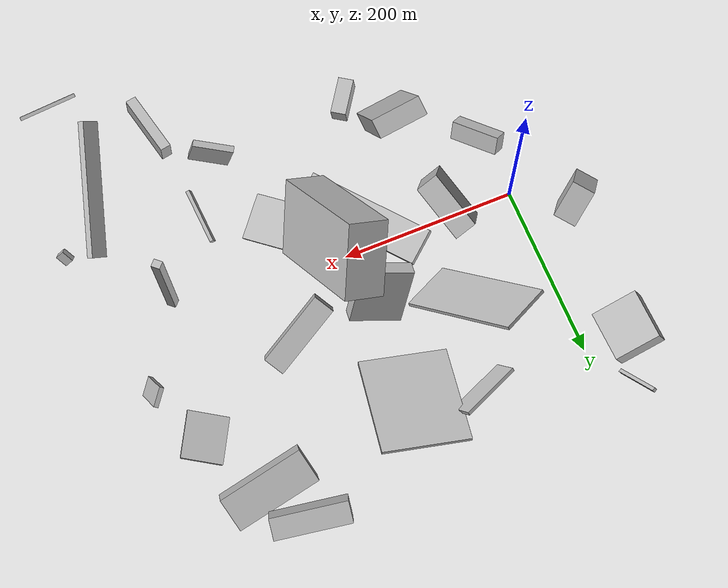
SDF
<sdf version="1.6">
 <world name="default">
  <scene>
   <sky><clouds><speed>12</speed></clouds></sky>
   <ambient>0.4 0.4 0.4 1</ambient>
   <background>0.7 0.7 0.7 1</background>
   <shadows>1</shadows>
  </scene>
  <gravity>0 0 -9.8066</gravity>
  <magnetic_field>6e-06 2.3e-05 -4.2e-05</magnetic_field>
  <physics default="0" name="default_physics" type="ode">
   <ode>
    <solver>
     <type>quick</type>
     <iters>10</iters>
     <sor>1.0</sor>
     <use_dynamic_moi_rescaling>0</use_dynamic_moi_rescaling>
    </solver>
    <constraints>
     <cfm>0</cfm>
     <erp>0.2</erp>
     <contact_max_correcting_vel>100</contact_max_correcting_vel>
     <contact_surface_layer>0.001</contact_surface_layer>
    </constraints>
   </ode>
   <max_step_size>0.004</max_step_size>
   <real_time_factor>1</real_time_factor>
   <real_time_update_rate>250</real_time_update_rate>
  </physics>
  <light name="sun" type="directional">
   <pose>0 0 10 0 0 0</pose>
   <diffuse>0.8 0.8 0.8 1</diffuse>
   <specular>0.2 0.2 0.2 1</specular>
   <attenuation>
    <range>1000</range>
    <constant>0.9</constant>
    <linear>0.01</linear>
    <quadratic>0.001</quadratic>
   </attenuation>
   <direction>-0.5 0.1 -0.9</direction>
  </light>
  <model name="building_1">
   <static>0</static>
   <pose>236.16062472716288 46.290515136741874 96.91088373057596 -0.49463708812445817 -0.7122660968472387 1.8048696692309025</pose>
   <link name="link">
    <gravity>0</gravity>
    <pose>0 0 42.0 0 0 0</pose>
    <collision name="collision"><geometry><box><size>150 45 84</size></box></geometry></collision>
    <visual name="visual">
     <cast_shadows>0</cast_shadows>
     <geometry><box><size>150 45 84</size></box></geometry>
     <material>
      <script>
       <uri>model://HANNAS_wall/materials/scripts</uri>
       <uri>model://HANNAS_wall/materials/textures</uri>
       <name>vrc/HANNAS_wall</name>
      </script>
     </material>
    </visual>
   </link>
  </model>
  <model name="building_2">
   <static>0</static>
   <pose>-28.33255233176123 71.10793827129255 75.92268475296956 0.8490178005715298 -0.16557899729844489 -0.8634249968507671</pose>
   <link name="link">
    <gravity>0</gravity>
    <pose>0 0 21.5 0 0 0</pose>
    <collision name="collision"><geometry><box><size>26 48 43</size></box></geometry></collision>
    <visual name="visual">
     <cast_shadows>0</cast_shadows>
     <geometry><box><size>26 48 43</size></box></geometry>
     <material>
      <script>
       <uri>model://HANNAS_wall/materials/scripts</uri>
       <uri>model://HANNAS_wall/materials/textures</uri>
       <name>vrc/HANNAS_wall</name>
      </script>
     </material>
    </visual>
   </link>
  </model>
  <model name="building_3">
   <static>0</static>
   <pose>70.63546792099761 -116.4435035707826 72.72080249831075 1.7219254542323839 0.49725884089211825 1.721339494194487</pose>
   <link name="link">
    <gravity>0</gravity>
    <pose>0 0 28.5 0 0 0</pose>
    <collision name="collision"><geometry><box><size>22 126 57</size></box></geometry></collision>
    <visual name="visual">
     <cast_shadows>0</cast_shadows>
     <geometry><box><size>22 126 57</size></box></geometry>
     <material>
      <script>
       <uri>model://HANNAS_wall/materials/scripts</uri>
       <uri>model://HANNAS_wall/materials/textures</uri>
       <name>vrc/HANNAS_wall</name>
      </script>
     </material>
    </visual>
   </link>
  </model>
  <model name="building_4">
   <static>0</static>
   <pose>167.01510822031847 86.38000266809233 72.40352613044124 1.2815026446972964 -0.42433475394031817 1.4118915057648609</pose>
   <link name="link">
    <gravity>0</gravity>
    <pose>0 0 29.0 0 0 0</pose>
    <collision name="collision"><geometry><box><size>16 70 58</size></box></geometry></collision>
    <visual name="visual">
     <cast_shadows>0</cast_shadows>
     <geometry><box><size>16 70 58</size></box></geometry>
     <material>
      <script>
       <uri>model://HANNAS_wall/materials/scripts</uri>
       <uri>model://HANNAS_wall/materials/textures</uri>
       <name>vrc/HANNAS_wall</name>
      </script>
     </material>
    </visual>
   </link>
  </model>
  <model name="building_5">
   <static>0</static>
   <pose>487.07726252920685 -78.46099318033173 102.74551354684445 2.498011397098992 -0.5780667050915819 0.9768756123714296</pose>
   <link name="link">
    <gravity>0</gravity>
    <pose>0 0 5.5 0 0 0</pose>
    <collision name="collision"><geometry><box><size>7 14 11</size></box></geometry></collision>
    <visual name="visual">
     <cast_shadows>0</cast_shadows>
     <geometry><box><size>7 14 11</size></box></geometry>
     <material>
      <script>
       <uri>model://HANNAS_wall/materials/scripts</uri>
       <uri>model://HANNAS_wall/materials/textures</uri>
       <name>vrc/HANNAS_wall</name>
      </script>
     </material>
    </visual>
   </link>
  </model>
  <model name="building_6">
   <static>0</static>
   <pose>298.5208377628368 107.93630995493432 130.14979058569116 2.720283308462723 -0.33867624679498726 -0.9794012958096773</pose>
   <link name="link">
    <gravity>0</gravity>
    <pose>0 0 10.5 0 0 0</pose>
    <collision name="collision"><geometry><box><size>24 84 21</size></box></geometry></collision>
    <visual name="visual">
     <cast_shadows>0</cast_shadows>
     <geometry><box><size>24 84 21</size></box></geometry>
     <material>
      <script>
       <uri>model://HANNAS_wall/materials/scripts</uri>
       <uri>model://HANNAS_wall/materials/textures</uri>
       <name>vrc/HANNAS_wall</name>
      </script>
     </material>
    </visual>
   </link>
  </model>
  <model name="building_7">
   <static>0</static>
   <pose>405.53108868248125 -24.778006139791703 68.54630293175555 -0.4070789827929711 -1.4976939772704538 -0.3472038522969602</pose>
   <link name="link">
    <gravity>0</gravity>
    <pose>0 0 5.0 0 0 0</pose>
    <collision name="collision"><geometry><box><size>119 9 10</size></box></geometry></collision>
    <visual name="visual">
     <cast_shadows>0</cast_shadows>
     <geometry><box><size>119 9 10</size></box></geometry>
     <material>
      <script>
       <uri>model://HANNAS_wall/materials/scripts</uri>
       <uri>model://HANNAS_wall/materials/textures</uri>
       <name>vrc/HANNAS_wall</name>
      </script>
     </material>
    </visual>
   </link>
  </model>
  <model name="building_8">
   <static>0</static>
   <pose>286.40617466205504 -117.83660372470997 106.56288196533747 1.4038154023176006 0.2102675810457593 1.0459930024372417</pose>
   <link name="link">
    <gravity>0</gravity>
    <pose>0 0 22.0 0 0 0</pose>
    <collision name="collision"><geometry><box><size>7 72 44</size></box></geometry></collision>
    <visual name="visual">
     <cast_shadows>0</cast_shadows>
     <geometry><box><size>7 72 44</size></box></geometry>
     <material>
      <script>
       <uri>model://HANNAS_wall/materials/scripts</uri>
       <uri>model://HANNAS_wall/materials/textures</uri>
       <name>vrc/HANNAS_wall</name>
      </script>
     </material>
    </visual>
   </link>
  </model>
  <model name="building_9">
   <static>0</static>
   <pose>443.6424422395214 -159.86257526890438 62.527046419911336 2.570947487391632 -0.39526347403190343 -1.891196128972499</pose>
   <link name="link">
    <gravity>0</gravity>
    <pose>0 0 13.0 0 0 0</pose>
    <collision name="collision"><geometry><box><size>150 7 26</size></box></geometry></collision>
    <visual name="visual">
     <cast_shadows>0</cast_shadows>
     <geometry><box><size>150 7 26</size></box></geometry>
     <material>
      <script>
       <uri>model://HANNAS_wall/materials/scripts</uri>
       <uri>model://HANNAS_wall/materials/textures</uri>
       <name>vrc/HANNAS_wall</name>
      </script>
     </material>
    </visual>
   </link>
  </model>
  <model name="building_10">
   <static>0</static>
   <pose>-25.852732181940052 263.5575227391844 46.43550043321168 -2.3718054196483527 0.2163742666656243 0.49333499311096424</pose>
   <link name="link">
    <gravity>0</gravity>
    <pose>0 0 2.0 0 0 0</pose>
    <collision name="collision"><geometry><box><size>4 61 4</size></box></geometry></collision>
    <visual name="visual">
     <cast_shadows>0</cast_shadows>
     <geometry><box><size>4 61 4</size></box></geometry>
     <material>
      <script>
       <uri>model://HANNAS_wall/materials/scripts</uri>
       <uri>model://HANNAS_wall/materials/textures</uri>
       <name>vrc/HANNAS_wall</name>
      </script>
     </material>
    </visual>
   </link>
  </model>
  <model name="building_11">
   <static>0</static>
   <pose>174.73260147646326 -15.880443964468041 57.854459733249996 -2.8829359297554777 -0.1454288954800238 2.200199579583886</pose>
   <link name="link">
    <gravity>0</gravity>
    <pose>0 0 4.0 0 0 0</pose>
    <collision name="collision"><geometry><box><size>150 41 8</size></box></geometry></collision>
    <visual name="visual">
     <cast_shadows>0</cast_shadows>
     <geometry><box><size>150 41 8</size></box></geometry>
     <material>
      <script>
       <uri>model://HANNAS_wall/materials/scripts</uri>
       <uri>model://HANNAS_wall/materials/textures</uri>
       <name>vrc/HANNAS_wall</name>
      </script>
     </material>
    </visual>
   </link>
  </model>
  <model name="building_12">
   <static>0</static>
   <pose>69.32279993968025 1.3425287346238939 65.07687106373697 2.423559911123164 -0.9986235374897586 0.9789026113602957</pose>
   <link name="link">
    <gravity>0</gravity>
    <pose>0 0 13.0 0 0 0</pose>
    <collision name="collision"><geometry><box><size>72 68 26</size></box></geometry></collision>
    <visual name="visual">
     <cast_shadows>0</cast_shadows>
     <geometry><box><size>72 68 26</size></box></geometry>
     <material>
      <script>
       <uri>model://HANNAS_wall/materials/scripts</uri>
       <uri>model://HANNAS_wall/materials/textures</uri>
       <name>vrc/HANNAS_wall</name>
      </script>
     </material>
    </visual>
   </link>
  </model>
  <model name="building_13">
   <static>0</static>
   <pose>446.6740446041411 -290.17584301805437 27.03771572283657 2.1065739555628817 -0.09994176354246467 -3.1140641541067664</pose>
   <link name="link">
    <gravity>0</gravity>
    <pose>0 0 2.0 0 0 0</pose>
    <collision name="collision"><geometry><box><size>67 4 4</size></box></geometry></collision>
    <visual name="visual">
     <cast_shadows>0</cast_shadows>
     <geometry><box><size>67 4 4</size></box></geometry>
     <material>
      <script>
       <uri>model://HANNAS_wall/materials/scripts</uri>
       <uri>model://HANNAS_wall/materials/textures</uri>
       <name>vrc/HANNAS_wall</name>
      </script>
     </material>
    </visual>
   </link>
  </model>
  <model name="building_14">
   <static>0</static>
   <pose>352.2808941618967 -205.76085687183888 45.181042364103156 -0.0943094235823287 0.03969308689427555 -2.946690247552413</pose>
   <link name="link">
    <gravity>0</gravity>
    <pose>0 0 10.0 0 0 0</pose>
    <collision name="collision"><geometry><box><size>12 75 20</size></box></geometry></collision>
    <visual name="visual">
     <cast_shadows>0</cast_shadows>
     <geometry><box><size>12 75 20</size></box></geometry>
     <material>
      <script>
       <uri>model://HANNAS_wall/materials/scripts</uri>
       <uri>model://HANNAS_wall/materials/textures</uri>
       <name>vrc/HANNAS_wall</name>
      </script>
     </material>
    </visual>
   </link>
  </model>
  <model name="building_15">
   <static>0</static>
   <pose>345.58262301565003 -57.4720906582606 122.67308226694453 -0.8236386189264343 -1.2259819778994185 0.8708593069028023</pose>
   <link name="link">
    <gravity>0</gravity>
    <pose>0 0 2.0 0 0 0</pose>
    <collision name="collision"><geometry><box><size>16 59 4</size></box></geometry></collision>
    <visual name="visual">
     <cast_shadows>0</cast_shadows>
     <geometry><box><size>16 59 4</size></box></geometry>
     <material>
      <script>
       <uri>model://HANNAS_wall/materials/scripts</uri>
       <uri>model://HANNAS_wall/materials/textures</uri>
       <name>vrc/HANNAS_wall</name>
      </script>
     </material>
    </visual>
   </link>
  </model>
  <model name="building_16">
   <static>0</static>
   <pose>97.79517668170722 114.0014923430623 54.29409330675707 2.8847842987625762 -0.6642283840073415 2.211627689092635</pose>
   <link name="link">
    <gravity>0</gravity>
    <pose>0 0 2.0 0 0 0</pose>
    <collision name="collision"><geometry><box><size>148 62 4</size></box></geometry></collision>
    <visual name="visual">
     <cast_shadows>0</cast_shadows>
     <geometry><box><size>148 62 4</size></box></geometry>
     <material>
      <script>
       <uri>model://HANNAS_wall/materials/scripts</uri>
       <uri>model://HANNAS_wall/materials/textures</uri>
       <name>vrc/HANNAS_wall</name>
      </script>
     </material>
    </visual>
   </link>
  </model>
  <model name="building_17">
   <static>0</static>
   <pose>397.19023674155926 274.4455122963809 91.47417096600172 -1.3716703534526837 -1.05984676054434 1.2115979708701197</pose>
   <link name="link">
    <gravity>0</gravity>
    <pose>0 0 41.5 0 0 0</pose>
    <collision name="collision"><geometry><box><size>28 24 83</size></box></geometry></collision>
    <visual name="visual">
     <cast_shadows>0</cast_shadows>
     <geometry><box><size>28 24 83</size></box></geometry>
     <material>
      <script>
       <uri>model://HANNAS_wall/materials/scripts</uri>
       <uri>model://HANNAS_wall/materials/textures</uri>
       <name>vrc/HANNAS_wall</name>
      </script>
     </material>
    </visual>
   </link>
  </model>
  <model name="building_18">
   <static>0</static>
   <pose>-16.60964476929074 259.50940157135807 144.63726145564175 -1.4692185909634377 1.199055576990132 -2.9945975536759755</pose>
   <link name="link">
    <gravity>0</gravity>
    <pose>0 0 26.5 0 0 0</pose>
    <collision name="collision"><geometry><box><size>35 50 53</size></box></geometry></collision>
    <visual name="visual">
     <cast_shadows>0</cast_shadows>
     <geometry><box><size>35 50 53</size></box></geometry>
     <material>
      <script>
       <uri>model://HANNAS_wall/materials/scripts</uri>
       <uri>model://HANNAS_wall/materials/textures</uri>
       <name>vrc/HANNAS_wall</name>
      </script>
     </material>
    </visual>
   </link>
  </model>
  <model name="building_19">
   <static>0</static>
   <pose>22.802799015454664 -57.31233066460958 55.37861551351485 -2.146825671216777 -0.23253873046331 2.2517818982072524</pose>
   <link name="link">
    <gravity>0</gravity>
    <pose>0 0 8.5 0 0 0</pose>
    <collision name="collision"><geometry><box><size>56 21 17</size></box></geometry></collision>
    <visual name="visual">
     <cast_shadows>0</cast_shadows>
     <geometry><box><size>56 21 17</size></box></geometry>
     <material>
      <script>
       <uri>model://HANNAS_wall/materials/scripts</uri>
       <uri>model://HANNAS_wall/materials/textures</uri>
       <name>vrc/HANNAS_wall</name>
      </script>
     </material>
    </visual>
   </link>
  </model>
  <model name="building_20">
   <static>0</static>
   <pose>250.5130456822043 185.87016479963034 53.662111353527834 2.0256255336867524 -1.307264141299741 -2.2124238874868394</pose>
   <link name="link">
    <gravity>0</gravity>
    <pose>0 0 49.0 0 0 0</pose>
    <collision name="collision"><geometry><box><size>4 114 98</size></box></geometry></collision>
    <visual name="visual">
     <cast_shadows>0</cast_shadows>
     <geometry><box><size>4 114 98</size></box></geometry>
     <material>
      <script>
       <uri>model://HANNAS_wall/materials/scripts</uri>
       <uri>model://HANNAS_wall/materials/textures</uri>
       <name>vrc/HANNAS_wall</name>
      </script>
     </material>
    </visual>
   </link>
  </model>
  <model name="building_21">
   <static>0</static>
   <pose>152.74545834240067 -135.35184947861083 63.72500493051996 -0.46474513018522423 1.42536788275397 -2.652105922092545</pose>
   <link name="link">
    <gravity>0</gravity>
    <pose>0 0 20.5 0 0 0</pose>
    <collision name="collision"><geometry><box><size>23 17 41</size></box></geometry></collision>
    <visual name="visual">
     <cast_shadows>0</cast_shadows>
     <geometry><box><size>23 17 41</size></box></geometry>
     <material>
      <script>
       <uri>model://HANNAS_wall/materials/scripts</uri>
       <uri>model://HANNAS_wall/materials/textures</uri>
       <name>vrc/HANNAS_wall</name>
      </script>
     </material>
    </visual>
   </link>
  </model>
  <model name="building_22">
   <static>0</static>
   <pose>184.42504186787514 -30.922962281637908 23.84001724745261 -0.9411299380798321 -0.020646797694283226 -0.29228383829088184</pose>
   <link name="link">
    <gravity>0</gravity>
    <pose>0 0 27.5 0 0 0</pose>
    <collision name="collision"><geometry><box><size>104 6 55</size></box></geometry></collision>
    <visual name="visual">
     <cast_shadows>0</cast_shadows>
     <geometry><box><size>104 6 55</size></box></geometry>
     <material>
      <script>
       <uri>model://HANNAS_wall/materials/scripts</uri>
       <uri>model://HANNAS_wall/materials/textures</uri>
       <name>vrc/HANNAS_wall</name>
      </script>
     </material>
    </visual>
   </link>
  </model>
  <model name="building_23">
   <static>0</static>
   <pose>406.06365119302836 170.33023916031868 80.01195247006203 -0.2307373870905965 1.3224449985269218 -0.738921721869778</pose>
   <link name="link">
    <gravity>0</gravity>
    <pose>0 0 22.5 0 0 0</pose>
    <collision name="collision"><geometry><box><size>4 51 45</size></box></geometry></collision>
    <visual name="visual">
     <cast_shadows>0</cast_shadows>
     <geometry><box><size>4 51 45</size></box></geometry>
     <material>
      <script>
       <uri>model://HANNAS_wall/materials/scripts</uri>
       <uri>model://HANNAS_wall/materials/textures</uri>
       <name>vrc/HANNAS_wall</name>
      </script>
     </material>
    </visual>
   </link>
  </model>
  <model name="building_24">
   <static>0</static>
   <pose>285.26213472049744 -68.6670189559557 45.35611365686771 0.6899030845803291 1.2091554504175221 3.0790289176172623</pose>
   <link name="link">
    <gravity>0</gravity>
    <pose>0 0 49.0 0 0 0</pose>
    <collision name="collision"><geometry><box><size>4 52 98</size></box></geometry></collision>
    <visual name="visual">
     <cast_shadows>0</cast_shadows>
     <geometry><box><size>4 52 98</size></box></geometry>
     <material>
      <script>
       <uri>model://HANNAS_wall/materials/scripts</uri>
       <uri>model://HANNAS_wall/materials/textures</uri>
       <name>vrc/HANNAS_wall</name>
      </script>
     </material>
    </visual>
   </link>
  </model>
  <model name="building_25">
   <static>0</static>
   <pose>380.8333695040153 222.53113212523735 51.89004681292779 0.2281689764291532 0.4873395184809945 1.8293297839065918</pose>
   <link name="link">
    <gravity>0</gravity>
    <pose>0 0 12.0 0 0 0</pose>
    <collision name="collision"><geometry><box><size>39 97 24</size></box></geometry></collision>
    <visual name="visual">
     <cast_shadows>0</cast_shadows>
     <geometry><box><size>39 97 24</size></box></geometry>
     <material>
      <script>
       <uri>model://HANNAS_wall/materials/scripts</uri>
       <uri>model://HANNAS_wall/materials/textures</uri>
       <name>vrc/HANNAS_wall</name>
      </script>
     </material>
    </visual>
   </link>
  </model>
  <model name="building_26">
   <static>0</static>
   <pose>454.0464344059053 83.39108636512151 51.83329793272001 -0.7947411673618933 0.9561014835635445 -1.4064756259261184</pose>
   <link name="link">
    <gravity>0</gravity>
    <pose>0 0 2.5 0 0 0</pose>
    <collision name="collision"><geometry><box><size>53 22 5</size></box></geometry></collision>
    <visual name="visual">
     <cast_shadows>0</cast_shadows>
     <geometry><box><size>53 22 5</size></box></geometry>
     <material>
      <script>
       <uri>model://HANNAS_wall/materials/scripts</uri>
       <uri>model://HANNAS_wall/materials/textures</uri>
       <name>vrc/HANNAS_wall</name>
      </script>
     </material>
    </visual>
   </link>
  </model>
  <model name="building_27">
   <static>0</static>
   <pose>130.15032546861346 210.6765078647019 48.616553839557106 2.303540405435611 0.11207256524103358 -2.7231110508251506</pose>
   <link name="link">
    <gravity>0</gravity>
    <pose>0 0 2.0 0 0 0</pose>
    <collision name="collision"><geometry><box><size>72 27 4</size></box></geometry></collision>
    <visual name="visual">
     <cast_shadows>0</cast_shadows>
     <geometry><box><size>72 27 4</size></box></geometry>
     <material>
      <script>
       <uri>model://HANNAS_wall/materials/scripts</uri>
       <uri>model://HANNAS_wall/materials/textures</uri>
       <name>vrc/HANNAS_wall</name>
      </script>
     </material>
    </visual>
   </link>
  </model>
 </world>
</sdf>
